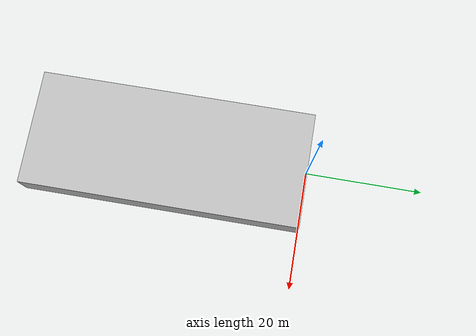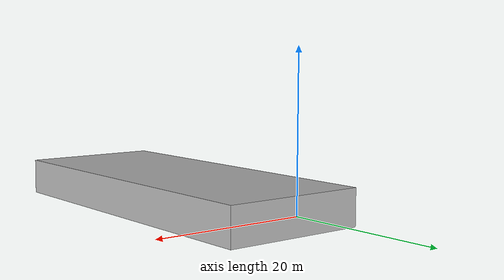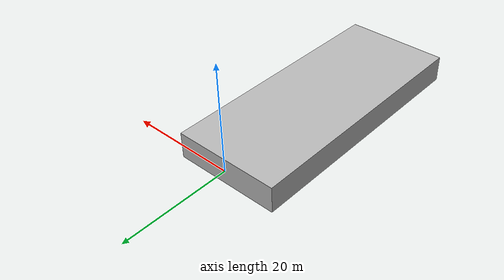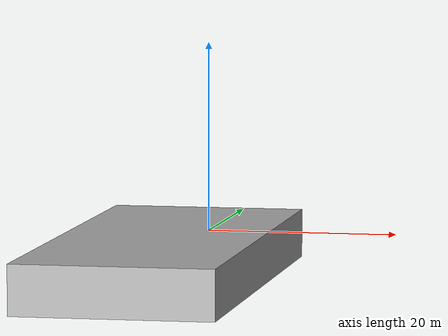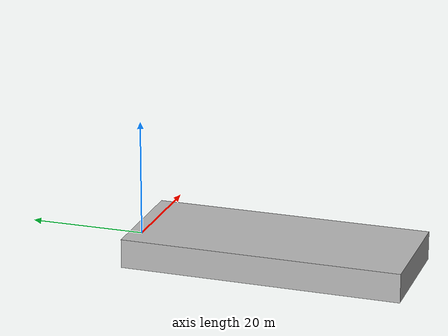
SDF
<?xml version='1.0' ?>
<sdf version="1.6">
    <model name="CubeSoft">
        <static>true</static>
        <link name="link">
            <pose>0 0 0 1.57 3.14159 0</pose>
            <collision name="collision">
                <geometry>
                    <mesh>
                        <uri>meshes/Cuboid_5x5x8.stl</uri>
                        <scale>0.004 0.001 0.006</scale>
                    </mesh>
                </geometry>
            </collision>
            <visual name="visual">
                <geometry>
                    <mesh>
                        <uri>meshes/Cuboid_5x5x8.stl</uri>
                        <scale>0.004 0.001 0.006</scale>
                    </mesh>
                </geometry>
            </visual>
        </link>
    </model>
</sdf>
